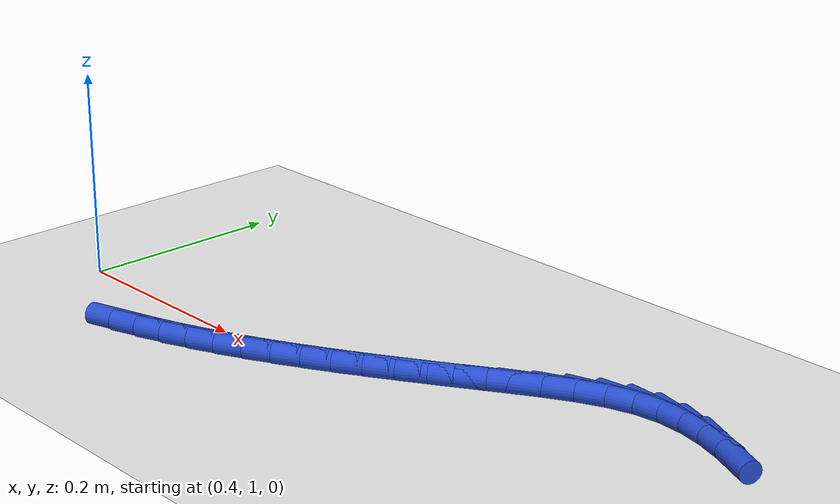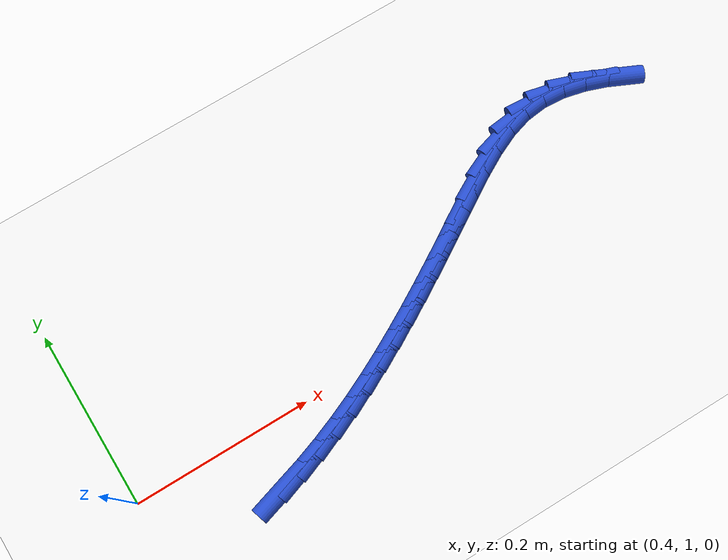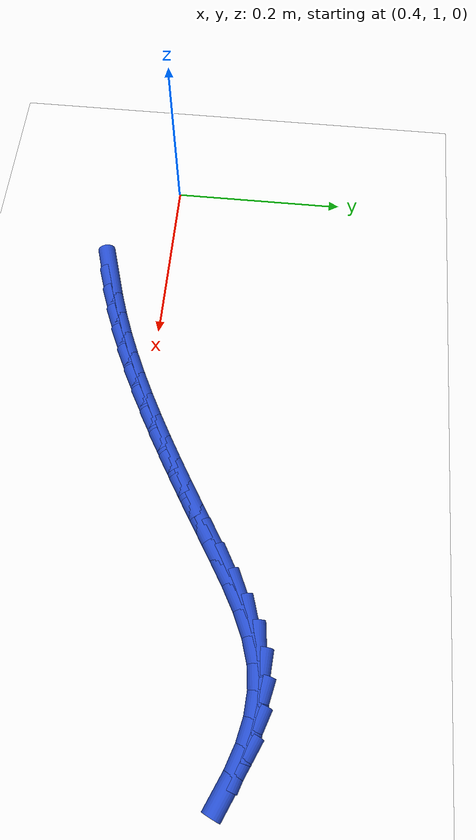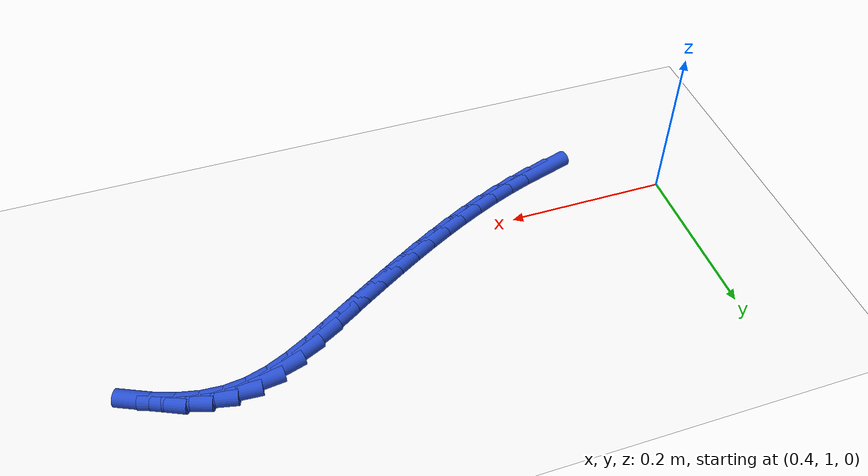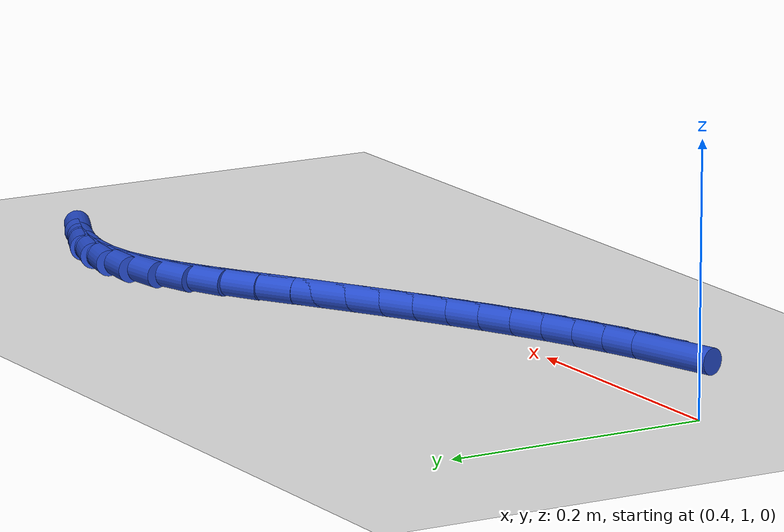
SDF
<sdf version="1.6">
 <world name="default">
  <model name="ground_plane">
   <static>1</static>
   <link name="link">
    <collision name="collision">
     <geometry><plane><normal>0 0 1</normal><size>100 100</size></plane></geometry>
     <surface><friction><ode><mu>100</mu><mu2>50</mu2></ode></friction></surface>
    </collision>
    <visual name="visual">
     <cast_shadows>0</cast_shadows>
     <geometry><plane><normal>0 0 1</normal><size>100 100</size></plane></geometry>
     <material>
      <script><uri>file://media/materials/scripts/gazebo.material</uri><name>Gazebo/WhiteGlow</name></script>
     </material>
    </visual>
   </link>
  </model>
  <model name="line">
   <link name="link_43">
    <pose>0.5377856823550313 0.935997992531279 0.01 0 1.57 0.2933898754285222</pose>
    <collision name="collision">
     <geometry><cylinder><radius>0.01</radius><length>0.08</length></cylinder></geometry>
    </collision>
    <visual name="visual">
     <material>
      <script><name>Gazebo/Blue</name><uri>file://media/materials/scripts/gazebo.material</uri></script>
     </material>
     <geometry><cylinder><radius>0.01</radius><length>0.08</length></cylinder></geometry>
    </visual>
   </link>
   <link name="link_44">
    <pose>0.5642935335621662 0.9440062339589281 0.01 0 1.57 0.3333580683493871</pose>
    <collision name="collision">
     <geometry><cylinder><radius>0.01</radius><length>0.08</length></cylinder></geometry>
    </collision>
    <visual name="visual">
     <material>
      <script><name>Gazebo/Blue</name><uri>file://media/materials/scripts/gazebo.material</uri></script>
     </material>
     <geometry><cylinder><radius>0.01</radius><length>0.08</length></cylinder></geometry>
    </visual>
   </link>
   <link name="link_45">
    <pose>0.5902868686497622 0.9530072385320746 0.01 0 1.57 0.37061759378333986</pose>
    <collision name="collision">
     <geometry><cylinder><radius>0.01</radius><length>0.08</length></cylinder></geometry>
    </collision>
    <visual name="visual">
     <material>
      <script><name>Gazebo/Blue</name><uri>file://media/materials/scripts/gazebo.material</uri></script>
     </material>
     <geometry><cylinder><radius>0.01</radius><length>0.08</length></cylinder></geometry>
    </visual>
   </link>
   <link name="link_46">
    <pose>0.6158309054802777 0.9629329828907063 0.01 0 1.57 0.4048791040957788</pose>
    <collision name="collision">
     <geometry><cylinder><radius>0.01</radius><length>0.08</length></cylinder></geometry>
    </collision>
    <visual name="visual">
     <material>
      <script><name>Gazebo/Blue</name><uri>file://media/materials/scripts/gazebo.material</uri></script>
     </material>
     <geometry><cylinder><radius>0.01</radius><length>0.08</length></cylinder></geometry>
    </visual>
   </link>
   <link name="link_47">
    <pose>0.6409908619161702 0.9737154436748117 0.01 0 1.57 0.4359209444267615</pose>
    <collision name="collision">
     <geometry><cylinder><radius>0.01</radius><length>0.08</length></cylinder></geometry>
    </collision>
    <visual name="visual">
     <material>
      <script><name>Gazebo/Blue</name><uri>file://media/materials/scripts/gazebo.material</uri></script>
     </material>
     <geometry><cylinder><radius>0.01</radius><length>0.08</length></cylinder></geometry>
    </visual>
   </link>
   <link name="link_48">
    <pose>0.6658319558198971 0.9852865975243785 0.01 0 1.57 0.46358575237568</pose>
    <collision name="collision">
     <geometry><cylinder><radius>0.01</radius><length>0.08</length></cylinder></geometry>
    </collision>
    <visual name="visual">
     <material>
      <script><name>Gazebo/Blue</name><uri>file://media/materials/scripts/gazebo.material</uri></script>
     </material>
     <geometry><cylinder><radius>0.01</radius><length>0.08</length></cylinder></geometry>
    </visual>
   </link>
   <link name="link_49">
    <pose>0.6904194050539163 0.9975784210793948 0.01 0 1.57 0.4877740684129644</pose>
    <collision name="collision">
     <geometry><cylinder><radius>0.01</radius><length>0.08</length></cylinder></geometry>
    </collision>
    <visual name="visual">
     <material>
      <script><name>Gazebo/Blue</name><uri>file://media/materials/scripts/gazebo.material</uri></script>
     </material>
     <geometry><cylinder><radius>0.01</radius><length>0.08</length></cylinder></geometry>
    </visual>
   </link>
   <link name="link_50">
    <pose>0.7148184274806861 1.0105228909798492 0.01 0 1.57 0.508436257500345</pose>
    <collision name="collision">
     <geometry><cylinder><radius>0.01</radius><length>0.08</length></cylinder></geometry>
    </collision>
    <visual name="visual">
     <material>
      <script><name>Gazebo/Blue</name><uri>file://media/materials/scripts/gazebo.material</uri></script>
     </material>
     <geometry><cylinder><radius>0.01</radius><length>0.08</length></cylinder></geometry>
    </visual>
   </link>
   <link name="link_51">
    <pose>0.7390942409626634 1.0240519838657287 0.01 0 1.57 0.5255638802514572</pose>
    <collision name="collision">
     <geometry><cylinder><radius>0.01</radius><length>0.08</length></cylinder></geometry>
    </collision>
    <visual name="visual">
     <material>
      <script><name>Gazebo/Blue</name><uri>file://media/materials/scripts/gazebo.material</uri></script>
     </material>
     <geometry><cylinder><radius>0.01</radius><length>0.08</length></cylinder></geometry>
    </visual>
   </link>
   <link name="link_52">
    <pose>0.7633120633623065 1.0380976763770224 0.01 0 1.57 0.5391813861630207</pose>
    <collision name="collision">
     <geometry><cylinder><radius>0.01</radius><length>0.08</length></cylinder></geometry>
    </collision>
    <visual name="visual">
     <material>
      <script><name>Gazebo/Blue</name><uri>file://media/materials/scripts/gazebo.material</uri></script>
     </material>
     <geometry><cylinder><radius>0.01</radius><length>0.08</length></cylinder></geometry>
    </visual>
   </link>
   <link name="link_53">
    <pose>0.7875371125420727 1.0525919451537178 0.01 0 1.57 0.549338712858866</pose>
    <collision name="collision">
     <geometry><cylinder><radius>0.01</radius><length>0.08</length></cylinder></geometry>
    </collision>
    <visual name="visual">
     <material>
      <script><name>Gazebo/Blue</name><uri>file://media/materials/scripts/gazebo.material</uri></script>
     </material>
     <geometry><cylinder><radius>0.01</radius><length>0.08</length></cylinder></geometry>
    </visual>
   </link>
   <link name="link_54">
    <pose>0.8118346063644202 1.067466766835803 0.01 0 1.57 0.5561051167401195</pose>
    <collision name="collision">
     <geometry><cylinder><radius>0.01</radius><length>0.08</length></cylinder></geometry>
    </collision>
    <visual name="visual">
     <material>
      <script><name>Gazebo/Blue</name><uri>file://media/materials/scripts/gazebo.material</uri></script>
     </material>
     <geometry><cylinder><radius>0.01</radius><length>0.08</length></cylinder></geometry>
    </visual>
   </link>
   <link name="link_55">
    <pose>0.8362697626918066 1.082654118063267 0.01 0 1.57 0.5594019995564627</pose>
    <collision name="collision">
     <geometry><cylinder><radius>0.01</radius><length>0.08</length></cylinder></geometry>
    </collision>
    <visual name="visual">
     <material>
      <script><name>Gazebo/Blue</name><uri>file://media/materials/scripts/gazebo.material</uri></script>
     </material>
     <geometry><cylinder><radius>0.01</radius><length>0.08</length></cylinder></geometry>
    </visual>
   </link>
   <link name="link_56">
    <pose>0.8609070505375509 1.098079937723464 0.01 0 1.57 0.548538417822134</pose>
    <collision name="collision">
     <geometry><cylinder><radius>0.01</radius><length>0.08</length></cylinder></geometry>
    </collision>
    <visual name="visual">
     <material>
      <script><name>Gazebo/Blue</name><uri>file://media/materials/scripts/gazebo.material</uri></script>
     </material>
     <geometry><cylinder><radius>0.01</radius><length>0.08</length></cylinder></geometry>
    </visual>
   </link>
   <link name="link_57">
    <pose>0.8857610759110623 1.1132681338170665 0.01 0 1.57 0.5051282833225889</pose>
    <collision name="collision">
     <geometry><cylinder><radius>0.01</radius><length>0.08</length></cylinder></geometry>
    </collision>
    <visual name="visual">
     <material>
      <script><name>Gazebo/Blue</name><uri>file://media/materials/scripts/gazebo.material</uri></script>
     </material>
     <geometry><cylinder><radius>0.01</radius><length>0.08</length></cylinder></geometry>
    </visual>
   </link>
   <link name="link_58">
    <pose>0.9107661793686341 1.1270954573594927 0.01 0 1.57 0.4227598619854854</pose>
    <collision name="collision">
     <geometry><cylinder><radius>0.01</radius><length>0.08</length></cylinder></geometry>
    </collision>
    <visual name="visual">
     <material>
      <script><name>Gazebo/Blue</name><uri>file://media/materials/scripts/gazebo.material</uri></script>
     </material>
     <geometry><cylinder><radius>0.01</radius><length>0.08</length></cylinder></geometry>
    </visual>
   </link>
   <link name="link_59">
    <pose>0.9358494367512108 1.1383800860808817 0.01 0 1.57 0.2926837585913416</pose>
    <collision name="collision">
     <geometry><cylinder><radius>0.01</radius><length>0.08</length></cylinder></geometry>
    </collision>
    <visual name="visual">
     <material>
      <script><name>Gazebo/Blue</name><uri>file://media/materials/scripts/gazebo.material</uri></script>
     </material>
     <geometry><cylinder><radius>0.01</radius><length>0.08</length></cylinder></geometry>
    </visual>
   </link>
   <link name="link_60">
    <pose>0.9609379238997373 1.1459401977113752 0.01 0 1.57 0.11414078489687311</pose>
    <collision name="collision">
     <geometry><cylinder><radius>0.01</radius><length>0.08</length></cylinder></geometry>
    </collision>
    <visual name="visual">
     <material>
      <script><name>Gazebo/Blue</name><uri>file://media/materials/scripts/gazebo.material</uri></script>
     </material>
     <geometry><cylinder><radius>0.01</radius><length>0.08</length></cylinder></geometry>
    </visual>
   </link>
   <link name="link_61">
    <pose>0.9859719474398841 1.1488100746781469 0.01 0 1.57 -0.06456572657748733</pose>
    <collision name="collision">
     <geometry><cylinder><radius>0.01</radius><length>0.08</length></cylinder></geometry>
    </collision>
    <visual name="visual">
     <material>
      <script><name>Gazebo/Blue</name><uri>file://media/materials/scripts/gazebo.material</uri></script>
     </material>
     <geometry><cylinder><radius>0.01</radius><length>0.08</length></cylinder></geometry>
    </visual>
   </link>
   <link name="link_62">
    <pose>1.0109634603609354 1.1471942335270642 0.01 0 1.57 -0.2167809324883633</pose>
    <collision name="collision">
     <geometry><cylinder><radius>0.01</radius><length>0.08</length></cylinder></geometry>
    </collision>
    <visual name="visual">
     <material>
      <script><name>Gazebo/Blue</name><uri>file://media/materials/scripts/gazebo.material</uri></script>
     </material>
     <geometry><cylinder><radius>0.01</radius><length>0.08</length></cylinder></geometry>
    </visual>
   </link>
   <link name="link_63">
    <pose>1.0359485550609202 1.141691471243283 0.01 0 1.57 -0.3379353653395556</pose>
    <collision name="collision">
     <geometry><cylinder><radius>0.01</radius><length>0.08</length></cylinder></geometry>
    </collision>
    <visual name="visual">
     <material>
      <script><name>Gazebo/Blue</name><uri>file://media/materials/scripts/gazebo.material</uri></script>
     </material>
     <geometry><cylinder><radius>0.01</radius><length>0.08</length></cylinder></geometry>
    </visual>
   </link>
   <link name="link_64">
    <pose>1.060963342320641 1.1329008850665443 0.01 0 1.57 -0.42923634505481106</pose>
    <collision name="collision">
     <geometry><cylinder><radius>0.01</radius><length>0.08</length></cylinder></geometry>
    </collision>
    <visual name="visual">
     <material>
      <script><name>Gazebo/Blue</name><uri>file://media/materials/scripts/gazebo.material</uri></script>
     </material>
     <geometry><cylinder><radius>0.01</radius><length>0.08</length></cylinder></geometry>
    </visual>
   </link>
  </model>
 </world>
</sdf>
